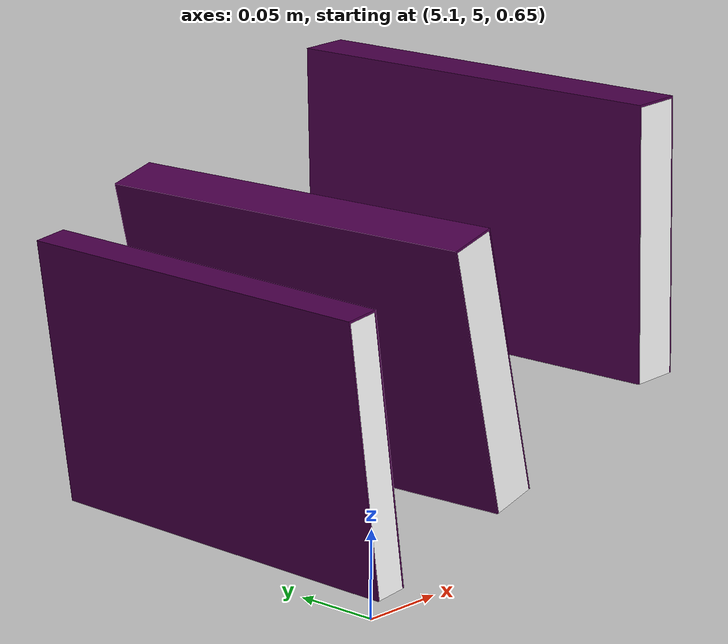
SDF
<?xml version="1.0" ?>
<sdf version="1.5">
  <world name="default">
    <!-- A global light source -->
    <include>
      <uri>model://sun</uri>
    </include>
    <!-- A ground plane -->
    <include>
      <uri>model://ground_plane</uri>
    </include>

    <include>
      <uri>model://book_1</uri>
      <name>book_1</name>
      <pose>5.291938 5.099524 0.821380 -1.545140 -0 -1.550380</pose>
    </include>
    <include>
      <uri>model://book_2</uri>
      <name>book_2</name>
      <pose>5.166265 5.112342 0.765291 -1.325030 -0 -1.517459</pose>
    </include>
    <include>
      <uri>model://book_3</uri>
      <name>book_3</name>
      <pose>5.096244 5.120840 0.738452 -1.432061 0 -1.603650</pose>
    </include>

  </world>
</sdf>

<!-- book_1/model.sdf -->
<sdf version='1.6'>
  <model name='book_1'>
    <link name='cover'>
      <pose frame=''>0 -0.000108 0.015405 0 -0 0</pose>
      <self_collide>0</self_collide>
      <kinematic>0</kinematic>
      <mass>0.01</mass>
      <visual name='visual'>
        <geometry>
          <box>
            <size>0.245 0.16 0.03</size>
          </box>
        </geometry>
        <material>
          <lighting>1</lighting>
          <ambient>0.3 0 0.3 1</ambient>
          <diffuse>0.3 0 0.3 1</diffuse>
          <specular>0.01 0.01 0.01 1</specular>
          <emissive>0 0 0 1</emissive>
          <shader type='vertex'>
            <normal_map>__default__</normal_map>
          </shader>
        </material>
	      <material>
          <script>
            <lighting>1</lighting>
            <uri>model://book_1/materials/scripts</uri>
            <uri>model://book_1/materials/textures</uri>
            <name>book_1</name>
          </script>
        </material>
        <cast_shadows>1</cast_shadows>
        <transparency>0</transparency>
      </visual>
      <collision name='collision'>
        <laser_retro>0</laser_retro>
        <max_contacts>10</max_contacts>
          <geometry>
          <box>
            <size>0.245 0.16 0.03</size>
          </box>
        </geometry>
       </collision>
    </link>
    <link name='page'>
      <pose frame=''>0 0.000608 0.015405 0 -0 0</pose>
       <visual name='visual'>
        <pose frame=''>0 0 0 0 -0 0</pose>
        <geometry>
          <box>
            <size>0.24502 0.15862 0.028</size>
          </box>
        </geometry>
        <material>
          <lighting>1</lighting>
           <ambient>1 1 1 1</ambient>
          <diffuse>1 1 1 1</diffuse>
          <specular>0.01 0.01 0.01 1</specular>
          <emissive>0 0 0 1</emissive>
          <shader type='vertex'>
            <normal_map>__default__</normal_map>
          </shader>
        </material>
        <cast_shadows>1</cast_shadows>
        <transparency>0</transparency>
      </visual>
      <collision name='collision'>
        <laser_retro>0</laser_retro>
        <max_contacts>10</max_contacts>
        <pose frame=''>0 0 0 0 -0 0</pose>
        <geometry>
          <box>
            <size>0.245 0.16 0.03</size>
          </box>
        </geometry>
        <surface>
          <friction>
            <ode>
              <mu>100</mu>
              <mu2>100</mu2>
            </ode>
          </friction>
        </surface>
        <contact>
          <ode>
            <max_vel>0</max_vel>
            <min_depth>0.001</min_depth>
          </ode>
        </contact>
      </collision>
    </link>
    <joint type="fixed" name="book_center">
      <pose>0 0 0 0 0 0</pose>
      <child>page</child>
      <parent>cover</parent>
      <axis>
        <xyz>0 1 0</xyz>
      </axis>
    </joint>
    <allow_auto_disable>1</allow_auto_disable>
  </model>
</sdf>

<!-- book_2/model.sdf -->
<sdf version='1.6'>
  <model name='book_2'>
    <link name='cover'>
      <pose frame=''>0 -0.000108 0.015405 0 -0 0</pose>
      <self_collide>0</self_collide>
      <kinematic>0</kinematic>
      <gravity>1</gravity>
      <visual name='visual'>
        <geometry>
          <box>
            <size>0.245 0.16 0.03</size>
          </box>
        </geometry>
        <material>
          <lighting>1</lighting>
          <ambient>0.3 0.2 1 1</ambient>
          <diffuse>0.3 0 0.3 1</diffuse>
          <specular>0.01 0.01 0.01 1</specular>
          <emissive>0 0 0 1</emissive>
          <shader type='vertex'>
            <normal_map>__default__</normal_map>
          </shader>
        </material>
	<material>
          <script>
            <uri>model://book_2/materials/scripts</uri>
            <uri>model://book_2/materials/textures</uri>
            <name>book_2</name>
          </script>
        </material>
        <cast_shadows>1</cast_shadows>
        <transparency>0</transparency>
      </visual>
      <collision name='collision'>
        <laser_retro>0</laser_retro>
        <max_contacts>10</max_contacts>
          <geometry>
          <box>
            <size>0.245 0.16 0.03</size>
          </box>
        </geometry>
       </collision>
    </link>
    <link name='page'>
      <pose frame=''>0 0.000608 0.015405 0 -0 0</pose>
       <visual name='visual'>
        <pose frame=''>0 0 0 0 -0 0</pose>
        <geometry>
          <box>
            <size>0.24502 0.15862 0.028</size>
          </box>
        </geometry>
        <material>
          <lighting>1</lighting>
           <ambient>1 1 1 1</ambient>
          <diffuse>1 1 1 1</diffuse>
          <specular>0.01 0.01 0.01 1</specular>
          <emissive>0 0 0 1</emissive>
          <shader type='vertex'>
            <normal_map>__default__</normal_map>
          </shader>
        </material>
        <cast_shadows>1</cast_shadows>
        <transparency>0</transparency>
      </visual>
      <collision name='collision'>
        <laser_retro>0</laser_retro>
        <max_contacts>10</max_contacts>
        <pose frame=''>0 0 0 0 -0 0</pose>
        <geometry>
          <box>
            <size>0.245 0.16 0.03</size>
          </box>
        </geometry>
        <surface>
          <friction>
            <ode>
              <mu>0.2</mu>
              <mu2>0.2</mu2>
            </ode>
          </friction>
        </surface>
        <contact>
          <ode>
            <max_vel>0</max_vel>
            <min_depth>0.001</min_depth>
          </ode>
        </contact>
      </collision>
    </link>
    <joint type="fixed" name="book_center">
      <pose>0 0 0 0 0 0</pose>
      <child>page</child>
      <parent>cover</parent>
      <axis>
        <xyz>0 1 0</xyz>
      </axis>
    </joint>

    <allow_auto_disable>1</allow_auto_disable>
  </model>
</sdf>

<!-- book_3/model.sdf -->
<sdf version='1.6'>
  <model name='book_3'>
    <link name='cover'>
      <pose frame=''>0 -0.000108 0.010 0 -0 0</pose>
      <self_collide>0</self_collide>
      <kinematic>0</kinematic>
      <gravity>1</gravity>
      <visual name='visual'>
        <geometry>
          <box>
            <size>0.245 0.16 0.02</size>
          </box>
        </geometry>
        <material>
          <lighting>1</lighting>
          <ambient>0.3 1 0.5 1</ambient>
          <diffuse>0.3 0 0.3 1</diffuse>
          <specular>0.01 0.01 0.01 1</specular>
          <emissive>0 0 0 1</emissive>
          <shader type='vertex'>
            <normal_map>__default__</normal_map>
          </shader>
        </material>
	<material>
          <script>
            <uri>model://book_3/materials/scripts</uri>
            <uri>model://book_3/materials/textures</uri>
            <name>book_3</name>
          </script>
        </material>
        <cast_shadows>1</cast_shadows>
        <transparency>0</transparency>
      </visual>
      <collision name='collision'>
        <laser_retro>0</laser_retro>
        <max_contacts>10</max_contacts>
          <geometry>
          <box>
            <size>0.245 0.16 0.02</size>
          </box>
        </geometry>
        <surface>
          <friction>
            <ode>
              <mu>0.2</mu>
              <mu2>0.2</mu2>
            </ode>
          </friction>
        </surface>
        <contact>
          <ode>
            <max_vel>0</max_vel>
            <min_depth>0.001</min_depth>
          </ode>
        </contact>
       </collision>
    </link>
    <link name='page'>
      <pose frame=''>0 0.000608 0.010 0 -0 0</pose>
       <visual name='visual'>
        <pose frame=''>0 0 0 0 -0 0</pose>
        <geometry>
          <box>
            <size>0.24502 0.15862 0.018</size>
          </box>
        </geometry>
        <material>
          <lighting>1</lighting>
           <ambient>1 1 1 1</ambient>
          <diffuse>1 1 1 1</diffuse>
          <specular>0.01 0.01 0.01 1</specular>
          <emissive>0 0 0 1</emissive>
          <shader type='vertex'>
            <normal_map>__default__</normal_map>
          </shader>
        </material>
        <cast_shadows>1</cast_shadows>
        <transparency>0</transparency>
      </visual>
      <collision name='collision'>
        <laser_retro>0</laser_retro>
        <max_contacts>10</max_contacts>
        <pose frame=''>0 0 0 0 -0 0</pose>
        <geometry>
          <box>
            <size>0.245 0.16 0.018</size>
          </box>
        </geometry>
      </collision>
    </link>
    <joint type="fixed" name="book_center">
      <pose>0 0 0 0 0 0</pose>
      <child>page</child>
      <parent>cover</parent>
      <axis>
        <xyz>0 1 0</xyz>
      </axis>
    </joint>
    <allow_auto_disable>1</allow_auto_disable>
  </model>
</sdf>
